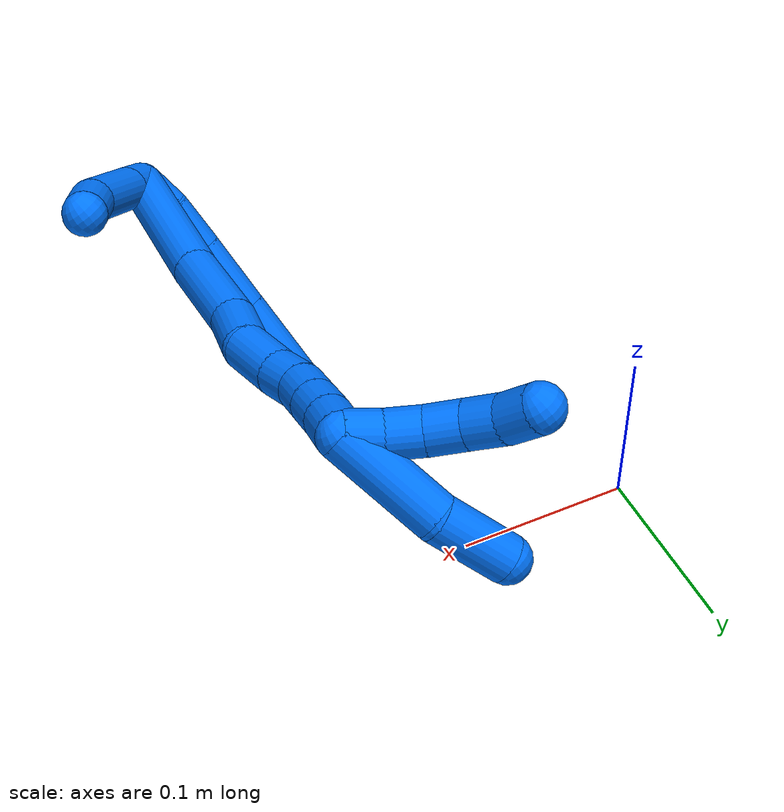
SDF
<sdf version="1.7">
 <world name="default">
  <model name="14">
   <static>0</static>
   <link name="14">
    <collision name="collision-cylinder-e_1_2_8">
     <pose>-0.001397 0.001871 -0.010816 -2.97027 -0.12663 1.27193</pose>
     <geometry><cylinder><radius>0.0125</radius><length>0.022131</length></cylinder></geometry>
     <surface>
      <friction><ode><mu>1.16</mu><mu2>1.16</mu2><slip1>0</slip1><slip2>0</slip2></ode></friction>
      <contact><ode><kp>1e+06</kp><kd>1</kd><max_vel>0</max_vel><min_depth>0.001</min_depth></ode></contact>
     </surface>
    </collision>
    <visual name="visual-cylinder-e_1_2_8">
     <pose>-0.001397 0.001871 -0.010816 -2.97027 -0.12663 1.27193</pose>
     <geometry><cylinder><radius>0.0125</radius><length>0.022131</length></cylinder></geometry>
     <material><ambient>0 0.462745 1 1</ambient></material>
    </visual>
    <collision name="collision-cylinder-e_2_8_9">
     <pose>-0.002456 0.0059 -0.036429 -2.99682 0.02266 -0.310002</pose>
     <geometry><cylinder><radius>0.0125</radius><length>0.029914</length></cylinder></geometry>
     <surface>
      <friction><ode><mu>1.16</mu><mu2>1.16</mu2><slip1>0</slip1><slip2>0</slip2></ode></friction>
      <contact><ode><kp>1e+06</kp><kd>1</kd><max_vel>0</max_vel><min_depth>0.001</min_depth></ode></contact>
     </surface>
    </collision>
    <visual name="visual-cylinder-e_2_8_9">
     <pose>-0.002456 0.0059 -0.036429 -2.99682 0.02266 -0.310002</pose>
     <geometry><cylinder><radius>0.0125</radius><length>0.029914</length></cylinder></geometry>
     <material><ambient>0 0.462745 1 1</ambient></material>
    </visual>
    <collision name="collision-cylinder-e_3_9_10">
     <pose>-0.001232 0.0115 -0.072986 -2.98468 0.040163 -0.500227</pose>
     <geometry><cylinder><radius>0.0125</radius><length>0.044097</length></cylinder></geometry>
     <surface>
      <friction><ode><mu>1.16</mu><mu2>1.16</mu2><slip1>0</slip1><slip2>0</slip2></ode></friction>
      <contact><ode><kp>1e+06</kp><kd>1</kd><max_vel>0</max_vel><min_depth>0.001</min_depth></ode></contact>
     </surface>
    </collision>
    <visual name="visual-cylinder-e_3_9_10">
     <pose>-0.001232 0.0115 -0.072986 -2.98468 0.040163 -0.500227</pose>
     <geometry><cylinder><radius>0.0125</radius><length>0.044097</length></cylinder></geometry>
     <material><ambient>0 0.462745 1 1</ambient></material>
    </visual>
    <collision name="collision-cylinder-e_4_10_6">
     <pose>0.00063 0.019233 -0.121313 -2.98152 0.036276 -0.444832</pose>
     <geometry><cylinder><radius>0.0125</radius><length>0.053858</length></cylinder></geometry>
     <surface>
      <friction><ode><mu>1.16</mu><mu2>1.16</mu2><slip1>0</slip1><slip2>0</slip2></ode></friction>
      <contact><ode><kp>1e+06</kp><kd>1</kd><max_vel>0</max_vel><min_depth>0.001</min_depth></ode></contact>
     </surface>
    </collision>
    <visual name="visual-cylinder-e_4_10_6">
     <pose>0.00063 0.019233 -0.121313 -2.98152 0.036276 -0.444832</pose>
     <geometry><cylinder><radius>0.0125</radius><length>0.053858</length></cylinder></geometry>
     <material><ambient>0 0.462745 1 1</ambient></material>
    </visual>
    <collision name="collision-cylinder-e_1_2_11">
     <pose>0.004928 0.008891 0.003719 -1.17468 0.472641 -0.317929</pose>
     <geometry><cylinder><radius>0.0125</radius><length>0.021649</length></cylinder></geometry>
     <surface>
      <friction><ode><mu>1.16</mu><mu2>1.16</mu2><slip1>0</slip1><slip2>0</slip2></ode></friction>
      <contact><ode><kp>1e+06</kp><kd>1</kd><max_vel>0</max_vel><min_depth>0.001</min_depth></ode></contact>
     </surface>
    </collision>
    <visual name="visual-cylinder-e_1_2_11">
     <pose>0.004928 0.008891 0.003719 -1.17468 0.472641 -0.317929</pose>
     <geometry><cylinder><radius>0.0125</radius><length>0.021649</length></cylinder></geometry>
     <material><ambient>0 0.462745 1 1</ambient></material>
    </visual>
    <collision name="collision-cylinder-e_2_11_12">
     <pose>0.021104 0.038612 0.015836 -1.18749 0.464344 -0.316516</pose>
     <geometry><cylinder><radius>0.0125</radius><length>0.050236</length></cylinder></geometry>
     <surface>
      <friction><ode><mu>1.16</mu><mu2>1.16</mu2><slip1>0</slip1><slip2>0</slip2></ode></friction>
      <contact><ode><kp>1e+06</kp><kd>1</kd><max_vel>0</max_vel><min_depth>0.001</min_depth></ode></contact>
     </surface>
    </collision>
    <visual name="visual-cylinder-e_2_11_12">
     <pose>0.021104 0.038612 0.015836 -1.18749 0.464344 -0.316516</pose>
     <geometry><cylinder><radius>0.0125</radius><length>0.050236</length></cylinder></geometry>
     <material><ambient>0 0.462745 1 1</ambient></material>
    </visual>
    <collision name="collision-cylinder-e_3_12_5">
     <pose>0.036681 0.072723 0.0258 -1.45353 0.312978 -0.278747</pose>
     <geometry><cylinder><radius>0.0125</radius><length>0.028115</length></cylinder></geometry>
     <surface>
      <friction><ode><mu>1.16</mu><mu2>1.16</mu2><slip1>0</slip1><slip2>0</slip2></ode></friction>
      <contact><ode><kp>1e+06</kp><kd>1</kd><max_vel>0</max_vel><min_depth>0.001</min_depth></ode></contact>
     </surface>
    </collision>
    <visual name="visual-cylinder-e_3_12_5">
     <pose>0.036681 0.072723 0.0258 -1.45353 0.312978 -0.278747</pose>
     <geometry><cylinder><radius>0.0125</radius><length>0.028115</length></cylinder></geometry>
     <material><ambient>0 0.462745 1 1</ambient></material>
    </visual>
    <collision name="collision-cylinder-e_1_2_13">
     <pose>0.006967 0.046301 -0.017178 -1.92605 0.140152 -0.201132</pose>
     <geometry><cylinder><radius>0.0125</radius><length>0.099748</length></cylinder></geometry>
     <surface>
      <friction><ode><mu>1.16</mu><mu2>1.16</mu2><slip1>0</slip1><slip2>0</slip2></ode></friction>
      <contact><ode><kp>1e+06</kp><kd>1</kd><max_vel>0</max_vel><min_depth>0.001</min_depth></ode></contact>
     </surface>
    </collision>
    <visual name="visual-cylinder-e_1_2_13">
     <pose>0.006967 0.046301 -0.017178 -1.92605 0.140152 -0.201132</pose>
     <geometry><cylinder><radius>0.0125</radius><length>0.099748</length></cylinder></geometry>
     <material><ambient>0 0.462745 1 1</ambient></material>
    </visual>
    <collision name="collision-cylinder-e_2_13_14">
     <pose>0.016565 0.11975 -0.043371 -1.89144 0.091702 -0.127</pose>
     <geometry><cylinder><radius>0.0125</radius><length>0.057452</length></cylinder></geometry>
     <surface>
      <friction><ode><mu>1.16</mu><mu2>1.16</mu2><slip1>0</slip1><slip2>0</slip2></ode></friction>
      <contact><ode><kp>1e+06</kp><kd>1</kd><max_vel>0</max_vel><min_depth>0.001</min_depth></ode></contact>
     </surface>
    </collision>
    <visual name="visual-cylinder-e_2_13_14">
     <pose>0.016565 0.11975 -0.043371 -1.89144 0.091702 -0.127</pose>
     <geometry><cylinder><radius>0.0125</radius><length>0.057452</length></cylinder></geometry>
     <material><ambient>0 0.462745 1 1</ambient></material>
    </visual>
    <collision name="collision-cylinder-e_3_14_15">
     <pose>0.022206 0.161934 -0.055111 -1.75002 0.194557 -0.232655</pose>
     <geometry><cylinder><radius>0.0125</radius><length>0.03115</length></cylinder></geometry>
     <surface>
      <friction><ode><mu>1.16</mu><mu2>1.16</mu2><slip1>0</slip1><slip2>0</slip2></ode></friction>
      <contact><ode><kp>1e+06</kp><kd>1</kd><max_vel>0</max_vel><min_depth>0.001</min_depth></ode></contact>
     </surface>
    </collision>
    <visual name="visual-cylinder-e_3_14_15">
     <pose>0.022206 0.161934 -0.055111 -1.75002 0.194557 -0.232655</pose>
     <geometry><cylinder><radius>0.0125</radius><length>0.03115</length></cylinder></geometry>
     <material><ambient>0 0.462745 1 1</ambient></material>
    </visual>
    <collision name="collision-cylinder-e_4_15_16">
     <pose>0.024022 0.191618 -0.063555 -1.94304 -0.07587 0.11101</pose>
     <geometry><cylinder><radius>0.0125</radius><length>0.03154</length></cylinder></geometry>
     <surface>
      <friction><ode><mu>1.16</mu><mu2>1.16</mu2><slip1>0</slip1><slip2>0</slip2></ode></friction>
      <contact><ode><kp>1e+06</kp><kd>1</kd><max_vel>0</max_vel><min_depth>0.001</min_depth></ode></contact>
     </surface>
    </collision>
    <visual name="visual-cylinder-e_4_15_16">
     <pose>0.024022 0.191618 -0.063555 -1.94304 -0.07587 0.11101</pose>
     <geometry><cylinder><radius>0.0125</radius><length>0.03154</length></cylinder></geometry>
     <material><ambient>0 0.462745 1 1</ambient></material>
    </visual>
    <collision name="collision-cylinder-e_5_16_17">
     <pose>0.021415 0.215774 -0.072101 -1.85986 -0.141434 0.189366</pose>
     <geometry><cylinder><radius>0.0125</radius><length>0.020039</length></cylinder></geometry>
     <surface>
      <friction><ode><mu>1.16</mu><mu2>1.16</mu2><slip1>0</slip1><slip2>0</slip2></ode></friction>
      <contact><ode><kp>1e+06</kp><kd>1</kd><max_vel>0</max_vel><min_depth>0.001</min_depth></ode></contact>
     </surface>
    </collision>
    <visual name="visual-cylinder-e_5_16_17">
     <pose>0.021415 0.215774 -0.072101 -1.85986 -0.141434 0.189366</pose>
     <geometry><cylinder><radius>0.0125</radius><length>0.020039</length></cylinder></geometry>
     <material><ambient>0 0.462745 1 1</ambient></material>
    </visual>
    <collision name="collision-cylinder-e_6_17_18">
     <pose>0.020622 0.235148 -0.076507 -1.72935 0.061921 -0.072599</pose>
     <geometry><cylinder><radius>0.0125</radius><length>0.020022</length></cylinder></geometry>
     <surface>
      <friction><ode><mu>1.16</mu><mu2>1.16</mu2><slip1>0</slip1><slip2>0</slip2></ode></friction>
      <contact><ode><kp>1e+06</kp><kd>1</kd><max_vel>0</max_vel><min_depth>0.001</min_depth></ode></contact>
     </surface>
    </collision>
    <visual name="visual-cylinder-e_6_17_18">
     <pose>0.020622 0.235148 -0.076507 -1.72935 0.061921 -0.072599</pose>
     <geometry><cylinder><radius>0.0125</radius><length>0.020022</length></cylinder></geometry>
     <material><ambient>0 0.462745 1 1</ambient></material>
    </visual>
    <collision name="collision-cylinder-e_7_18_19">
     <pose>0.021845 0.254914 -0.079408 -1.70369 0.060386 -0.068989</pose>
     <geometry><cylinder><radius>0.0125</radius><length>0.020011</length></cylinder></geometry>
     <surface>
      <friction><ode><mu>1.16</mu><mu2>1.16</mu2><slip1>0</slip1><slip2>0</slip2></ode></friction>
      <contact><ode><kp>1e+06</kp><kd>1</kd><max_vel>0</max_vel><min_depth>0.001</min_depth></ode></contact>
     </surface>
    </collision>
    <visual name="visual-cylinder-e_7_18_19">
     <pose>0.021845 0.254914 -0.079408 -1.70369 0.060386 -0.068989</pose>
     <geometry><cylinder><radius>0.0125</radius><length>0.020011</length></cylinder></geometry>
     <material><ambient>0 0.462745 1 1</ambient></material>
    </visual>
    <collision name="collision-cylinder-e_8_19_1">
     <pose>0.023567 0.274728 -0.081641 -1.66237 0.11187 -0.122588</pose>
     <geometry><cylinder><radius>0.0125</radius><length>0.020037</length></cylinder></geometry>
     <surface>
      <friction><ode><mu>1.16</mu><mu2>1.16</mu2><slip1>0</slip1><slip2>0</slip2></ode></friction>
      <contact><ode><kp>1e+06</kp><kd>1</kd><max_vel>0</max_vel><min_depth>0.001</min_depth></ode></contact>
     </surface>
    </collision>
    <visual name="visual-cylinder-e_8_19_1">
     <pose>0.023567 0.274728 -0.081641 -1.66237 0.11187 -0.122588</pose>
     <geometry><cylinder><radius>0.0125</radius><length>0.020037</length></cylinder></geometry>
     <material><ambient>0 0.462745 1 1</ambient></material>
    </visual>
    <collision name="collision-cylinder-e_1_1_20">
     <pose>0.017067 0.286015 -0.088882 -2.92798 -0.866162 2.68587</pose>
     <geometry><cylinder><radius>0.0125</radius><length>0.02</length></cylinder></geometry>
     <surface>
      <friction><ode><mu>1.16</mu><mu2>1.16</mu2><slip1>0</slip1><slip2>0</slip2></ode></friction>
      <contact><ode><kp>1e+06</kp><kd>1</kd><max_vel>0</max_vel><min_depth>0.001</min_depth></ode></contact>
     </surface>
    </collision>
    <visual name="visual-cylinder-e_1_1_20">
     <pose>0.017067 0.286015 -0.088882 -2.92798 -0.866162 2.68587</pose>
     <geometry><cylinder><radius>0.0125</radius><length>0.02</length></cylinder></geometry>
     <material><ambient>0 0.462745 1 1</ambient></material>
    </visual>
    <collision name="collision-cylinder-e_2_20_21">
     <pose>0.001399 0.290776 -0.100082 -2.53377 -0.935718 2.03058</pose>
     <geometry><cylinder><radius>0.0125</radius><length>0.02</length></cylinder></geometry>
     <surface>
      <friction><ode><mu>1.16</mu><mu2>1.16</mu2><slip1>0</slip1><slip2>0</slip2></ode></friction>
      <contact><ode><kp>1e+06</kp><kd>1</kd><max_vel>0</max_vel><min_depth>0.001</min_depth></ode></contact>
     </surface>
    </collision>
    <visual name="visual-cylinder-e_2_20_21">
     <pose>0.001399 0.290776 -0.100082 -2.53377 -0.935718 2.03058</pose>
     <geometry><cylinder><radius>0.0125</radius><length>0.02</length></cylinder></geometry>
     <material><ambient>0 0.462745 1 1</ambient></material>
    </visual>
    <collision name="collision-cylinder-e_3_21_22">
     <pose>-0.014596 0.299222 -0.108315 -2.15748 -0.918043 1.48969</pose>
     <geometry><cylinder><radius>0.0125</radius><length>0.02</length></cylinder></geometry>
     <surface>
      <friction><ode><mu>1.16</mu><mu2>1.16</mu2><slip1>0</slip1><slip2>0</slip2></ode></friction>
      <contact><ode><kp>1e+06</kp><kd>1</kd><max_vel>0</max_vel><min_depth>0.001</min_depth></ode></contact>
     </surface>
    </collision>
    <visual name="visual-cylinder-e_3_21_22">
     <pose>-0.014596 0.299222 -0.108315 -2.15748 -0.918043 1.48969</pose>
     <geometry><cylinder><radius>0.0125</radius><length>0.02</length></cylinder></geometry>
     <material><ambient>0 0.462745 1 1</ambient></material>
    </visual>
    <collision name="collision-cylinder-e_4_22_23">
     <pose>-0.02945 0.311226 -0.11368 -1.85153 -0.762864 0.979493</pose>
     <geometry><cylinder><radius>0.0125</radius><length>0.02</length></cylinder></geometry>
     <surface>
      <friction><ode><mu>1.16</mu><mu2>1.16</mu2><slip1>0</slip1><slip2>0</slip2></ode></friction>
      <contact><ode><kp>1e+06</kp><kd>1</kd><max_vel>0</max_vel><min_depth>0.001</min_depth></ode></contact>
     </surface>
    </collision>
    <visual name="visual-cylinder-e_4_22_23">
     <pose>-0.02945 0.311226 -0.11368 -1.85153 -0.762864 0.979493</pose>
     <geometry><cylinder><radius>0.0125</radius><length>0.02</length></cylinder></geometry>
     <material><ambient>0 0.462745 1 1</ambient></material>
    </visual>
    <collision name="collision-cylinder-e_5_23_4">
     <pose>-0.042539 0.326024 -0.115285 -1.52025 -0.666041 0.635417</pose>
     <geometry><cylinder><radius>0.0125</radius><length>0.02</length></cylinder></geometry>
     <surface>
      <friction><ode><mu>1.16</mu><mu2>1.16</mu2><slip1>0</slip1><slip2>0</slip2></ode></friction>
      <contact><ode><kp>1e+06</kp><kd>1</kd><max_vel>0</max_vel><min_depth>0.001</min_depth></ode></contact>
     </surface>
    </collision>
    <visual name="visual-cylinder-e_5_23_4">
     <pose>-0.042539 0.326024 -0.115285 -1.52025 -0.666041 0.635417</pose>
     <geometry><cylinder><radius>0.0125</radius><length>0.02</length></cylinder></geometry>
     <material><ambient>0 0.462745 1 1</ambient></material>
    </visual>
    <collision name="collision-cylinder-e_1_1_24">
     <pose>0.019982 0.293997 -0.110187 -2.81517 -0.159842 0.905345</pose>
     <geometry><cylinder><radius>0.0125</radius><length>0.059104</length></cylinder></geometry>
     <surface>
      <friction><ode><mu>1.16</mu><mu2>1.16</mu2><slip1>0</slip1><slip2>0</slip2></ode></friction>
      <contact><ode><kp>1e+06</kp><kd>1</kd><max_vel>0</max_vel><min_depth>0.001</min_depth></ode></contact>
     </surface>
    </collision>
    <visual name="visual-cylinder-e_1_1_24">
     <pose>0.019982 0.293997 -0.110187 -2.81517 -0.159842 0.905345</pose>
     <geometry><cylinder><radius>0.0125</radius><length>0.059104</length></cylinder></geometry>
     <material><ambient>0 0.462745 1 1</ambient></material>
    </visual>
    <collision name="collision-cylinder-e_2_24_3">
     <pose>0.008634 0.305678 -0.157019 -3.02103 -0.33097 2.44804</pose>
     <geometry><cylinder><radius>0.0125</radius><length>0.040896</length></cylinder></geometry>
     <surface>
      <friction><ode><mu>1.16</mu><mu2>1.16</mu2><slip1>0</slip1><slip2>0</slip2></ode></friction>
      <contact><ode><kp>1e+06</kp><kd>1</kd><max_vel>0</max_vel><min_depth>0.001</min_depth></ode></contact>
     </surface>
    </collision>
    <visual name="visual-cylinder-e_2_24_3">
     <pose>0.008634 0.305678 -0.157019 -3.02103 -0.33097 2.44804</pose>
     <geometry><cylinder><radius>0.0125</radius><length>0.040896</length></cylinder></geometry>
     <material><ambient>0 0.462745 1 1</ambient></material>
    </visual>
    <collision name="collision-sphere-3">
     <pose>0.001989 0.308004 -0.176217 0 -0 0</pose>
     <geometry><sphere><radius>0.0125</radius></sphere></geometry>
     <surface>
      <friction><ode><mu>1.16</mu><mu2>1.16</mu2><slip1>0</slip1><slip2>0</slip2></ode></friction>
      <contact><ode><kp>1e+06</kp><kd>1</kd><max_vel>0</max_vel><min_depth>0.001</min_depth></ode></contact>
     </surface>
    </collision>
    <visual name="visual-sphere-3">
     <pose>0.001989 0.308004 -0.176217 0 -0 0</pose>
     <geometry><sphere><radius>0.0125</radius></sphere></geometry>
     <material><ambient>0 0.462745 1 1</ambient></material>
    </visual>
    <collision name="collision-sphere-24">
     <pose>0.015279 0.303352 -0.137821 0 -0 0</pose>
     <geometry><sphere><radius>0.0125</radius></sphere></geometry>
     <surface>
      <friction><ode><mu>1.16</mu><mu2>1.16</mu2><slip1>0</slip1><slip2>0</slip2></ode></friction>
      <contact><ode><kp>1e+06</kp><kd>1</kd><max_vel>0</max_vel><min_depth>0.001</min_depth></ode></contact>
     </surface>
    </collision>
    <visual name="visual-sphere-24">
     <pose>0.015279 0.303352 -0.137821 0 -0 0</pose>
     <geometry><sphere><radius>0.0125</radius></sphere></geometry>
     <material><ambient>0 0.462745 1 1</ambient></material>
    </visual>
    <collision name="collision-sphere-4">
     <pose>-0.048717 0.333877 -0.114888 0 -0 0</pose>
     <geometry><sphere><radius>0.0125</radius></sphere></geometry>
     <surface>
      <friction><ode><mu>1.16</mu><mu2>1.16</mu2><slip1>0</slip1><slip2>0</slip2></ode></friction>
      <contact><ode><kp>1e+06</kp><kd>1</kd><max_vel>0</max_vel><min_depth>0.001</min_depth></ode></contact>
     </surface>
    </collision>
    <visual name="visual-sphere-4">
     <pose>-0.048717 0.333877 -0.114888 0 -0 0</pose>
     <geometry><sphere><radius>0.0125</radius></sphere></geometry>
     <material><ambient>0 0.462745 1 1</ambient></material>
    </visual>
    <collision name="collision-sphere-23">
     <pose>-0.03636 0.318171 -0.115683 0 -0 0</pose>
     <geometry><sphere><radius>0.0125</radius></sphere></geometry>
     <surface>
      <friction><ode><mu>1.16</mu><mu2>1.16</mu2><slip1>0</slip1><slip2>0</slip2></ode></friction>
      <contact><ode><kp>1e+06</kp><kd>1</kd><max_vel>0</max_vel><min_depth>0.001</min_depth></ode></contact>
     </surface>
    </collision>
    <visual name="visual-sphere-23">
     <pose>-0.03636 0.318171 -0.115683 0 -0 0</pose>
     <geometry><sphere><radius>0.0125</radius></sphere></geometry>
     <material><ambient>0 0.462745 1 1</ambient></material>
    </visual>
    <collision name="collision-sphere-22">
     <pose>-0.02254 0.30428 -0.111677 0 -0 0</pose>
     <geometry><sphere><radius>0.0125</radius></sphere></geometry>
     <surface>
      <friction><ode><mu>1.16</mu><mu2>1.16</mu2><slip1>0</slip1><slip2>0</slip2></ode></friction>
      <contact><ode><kp>1e+06</kp><kd>1</kd><max_vel>0</max_vel><min_depth>0.001</min_depth></ode></contact>
     </surface>
    </collision>
    <visual name="visual-sphere-22">
     <pose>-0.02254 0.30428 -0.111677 0 -0 0</pose>
     <geometry><sphere><radius>0.0125</radius></sphere></geometry>
     <material><ambient>0 0.462745 1 1</ambient></material>
    </visual>
    <collision name="collision-sphere-21">
     <pose>-0.006652 0.294164 -0.104952 0 -0 0</pose>
     <geometry><sphere><radius>0.0125</radius></sphere></geometry>
     <surface>
      <friction><ode><mu>1.16</mu><mu2>1.16</mu2><slip1>0</slip1><slip2>0</slip2></ode></friction>
      <contact><ode><kp>1e+06</kp><kd>1</kd><max_vel>0</max_vel><min_depth>0.001</min_depth></ode></contact>
     </surface>
    </collision>
    <visual name="visual-sphere-21">
     <pose>-0.006652 0.294164 -0.104952 0 -0 0</pose>
     <geometry><sphere><radius>0.0125</radius></sphere></geometry>
     <material><ambient>0 0.462745 1 1</ambient></material>
    </visual>
    <collision name="collision-sphere-20">
     <pose>0.009449 0.287388 -0.095212 0 -0 0</pose>
     <geometry><sphere><radius>0.0125</radius></sphere></geometry>
     <surface>
      <friction><ode><mu>1.16</mu><mu2>1.16</mu2><slip1>0</slip1><slip2>0</slip2></ode></friction>
      <contact><ode><kp>1e+06</kp><kd>1</kd><max_vel>0</max_vel><min_depth>0.001</min_depth></ode></contact>
     </surface>
    </collision>
    <visual name="visual-sphere-20">
     <pose>0.009449 0.287388 -0.095212 0 -0 0</pose>
     <geometry><sphere><radius>0.0125</radius></sphere></geometry>
     <material><ambient>0 0.462745 1 1</ambient></material>
    </visual>
    <collision name="collision-sphere-11">
     <pose>0.009855 0.017783 0.007437 0 -0 0</pose>
     <geometry><sphere><radius>0.0125</radius></sphere></geometry>
     <surface>
      <friction><ode><mu>1.16</mu><mu2>1.16</mu2><slip1>0</slip1><slip2>0</slip2></ode></friction>
      <contact><ode><kp>1e+06</kp><kd>1</kd><max_vel>0</max_vel><min_depth>0.001</min_depth></ode></contact>
     </surface>
    </collision>
    <visual name="visual-sphere-11">
     <pose>0.009855 0.017783 0.007437 0 -0 0</pose>
     <geometry><sphere><radius>0.0125</radius></sphere></geometry>
     <material><ambient>0 0.462745 1 1</ambient></material>
    </visual>
    <collision name="collision-sphere-6">
     <pose>0.001607 0.023522 -0.14788 0 -0 0</pose>
     <geometry><sphere><radius>0.0125</radius></sphere></geometry>
     <surface>
      <friction><ode><mu>1.16</mu><mu2>1.16</mu2><slip1>0</slip1><slip2>0</slip2></ode></friction>
      <contact><ode><kp>1e+06</kp><kd>1</kd><max_vel>0</max_vel><min_depth>0.001</min_depth></ode></contact>
     </surface>
    </collision>
    <visual name="visual-sphere-6">
     <pose>0.001607 0.023522 -0.14788 0 -0 0</pose>
     <geometry><sphere><radius>0.0125</radius></sphere></geometry>
     <material><ambient>0 0.462745 1 1</ambient></material>
    </visual>
    <collision name="collision-sphere-10">
     <pose>-0.000347 0.014943 -0.094746 0 -0 0</pose>
     <geometry><sphere><radius>0.0125</radius></sphere></geometry>
     <surface>
      <friction><ode><mu>1.16</mu><mu2>1.16</mu2><slip1>0</slip1><slip2>0</slip2></ode></friction>
      <contact><ode><kp>1e+06</kp><kd>1</kd><max_vel>0</max_vel><min_depth>0.001</min_depth></ode></contact>
     </surface>
    </collision>
    <visual name="visual-sphere-10">
     <pose>-0.000347 0.014943 -0.094746 0 -0 0</pose>
     <geometry><sphere><radius>0.0125</radius></sphere></geometry>
     <material><ambient>0 0.462745 1 1</ambient></material>
    </visual>
    <collision name="collision-sphere-9">
     <pose>-0.002117 0.008057 -0.051226 0 -0 0</pose>
     <geometry><sphere><radius>0.0125</radius></sphere></geometry>
     <surface>
      <friction><ode><mu>1.16</mu><mu2>1.16</mu2><slip1>0</slip1><slip2>0</slip2></ode></friction>
      <contact><ode><kp>1e+06</kp><kd>1</kd><max_vel>0</max_vel><min_depth>0.001</min_depth></ode></contact>
     </surface>
    </collision>
    <visual name="visual-sphere-9">
     <pose>-0.002117 0.008057 -0.051226 0 -0 0</pose>
     <geometry><sphere><radius>0.0125</radius></sphere></geometry>
     <material><ambient>0 0.462745 1 1</ambient></material>
    </visual>
    <collision name="collision-sphere-2">
     <geometry><sphere><radius>0.0125</radius></sphere></geometry>
     <surface>
      <friction><ode><mu>1.16</mu><mu2>1.16</mu2><slip1>0</slip1><slip2>0</slip2></ode></friction>
      <contact><ode><kp>1e+06</kp><kd>1</kd><max_vel>0</max_vel><min_depth>0.001</min_depth></ode></contact>
     </surface>
    </collision>
    <visual name="visual-sphere-2">
     <geometry><sphere><radius>0.0125</radius></sphere></geometry>
     <material><ambient>0 0.462745 1 1</ambient></material>
    </visual>
    <collision name="collision-sphere-19">
     <pose>0.022449 0.264814 -0.080731 0 -0 0</pose>
     <geometry><sphere><radius>0.0125</radius></sphere></geometry>
     <surface>
      <friction><ode><mu>1.16</mu><mu2>1.16</mu2><slip1>0</slip1><slip2>0</slip2></ode></friction>
      <contact><ode><kp>1e+06</kp><kd>1</kd><max_vel>0</max_vel><min_depth>0.001</min_depth></ode></contact>
     </surface>
    </collision>
    <visual name="visual-sphere-19">
     <pose>0.022449 0.264814 -0.080731 0 -0 0</pose>
     <geometry><sphere><radius>0.0125</radius></sphere></geometry>
     <material><ambient>0 0.462745 1 1</ambient></material>
    </visual>
    <collision name="collision-sphere-8">
     <pose>-0.002795 0.003743 -0.021632 0 -0 0</pose>
     <geometry><sphere><radius>0.0125</radius></sphere></geometry>
     <surface>
      <friction><ode><mu>1.16</mu><mu2>1.16</mu2><slip1>0</slip1><slip2>0</slip2></ode></friction>
      <contact><ode><kp>1e+06</kp><kd>1</kd><max_vel>0</max_vel><min_depth>0.001</min_depth></ode></contact>
     </surface>
    </collision>
    <visual name="visual-sphere-8">
     <pose>-0.002795 0.003743 -0.021632 0 -0 0</pose>
     <geometry><sphere><radius>0.0125</radius></sphere></geometry>
     <material><ambient>0 0.462745 1 1</ambient></material>
    </visual>
    <collision name="collision-sphere-12">
     <pose>0.032353 0.05944 0.024235 0 -0 0</pose>
     <geometry><sphere><radius>0.0125</radius></sphere></geometry>
     <surface>
      <friction><ode><mu>1.16</mu><mu2>1.16</mu2><slip1>0</slip1><slip2>0</slip2></ode></friction>
      <contact><ode><kp>1e+06</kp><kd>1</kd><max_vel>0</max_vel><min_depth>0.001</min_depth></ode></contact>
     </surface>
    </collision>
    <visual name="visual-sphere-12">
     <pose>0.032353 0.05944 0.024235 0 -0 0</pose>
     <geometry><sphere><radius>0.0125</radius></sphere></geometry>
     <material><ambient>0 0.462745 1 1</ambient></material>
    </visual>
    <collision name="collision-sphere-5">
     <pose>0.041009 0.086006 0.027365 0 -0 0</pose>
     <geometry><sphere><radius>0.0125</radius></sphere></geometry>
     <surface>
      <friction><ode><mu>1.16</mu><mu2>1.16</mu2><slip1>0</slip1><slip2>0</slip2></ode></friction>
      <contact><ode><kp>1e+06</kp><kd>1</kd><max_vel>0</max_vel><min_depth>0.001</min_depth></ode></contact>
     </surface>
    </collision>
    <visual name="visual-sphere-5">
     <pose>0.041009 0.086006 0.027365 0 -0 0</pose>
     <geometry><sphere><radius>0.0125</radius></sphere></geometry>
     <material><ambient>0 0.462745 1 1</ambient></material>
    </visual>
    <collision name="collision-sphere-13">
     <pose>0.013934 0.092603 -0.034355 0 -0 0</pose>
     <geometry><sphere><radius>0.0125</radius></sphere></geometry>
     <surface>
      <friction><ode><mu>1.16</mu><mu2>1.16</mu2><slip1>0</slip1><slip2>0</slip2></ode></friction>
      <contact><ode><kp>1e+06</kp><kd>1</kd><max_vel>0</max_vel><min_depth>0.001</min_depth></ode></contact>
     </surface>
    </collision>
    <visual name="visual-sphere-13">
     <pose>0.013934 0.092603 -0.034355 0 -0 0</pose>
     <geometry><sphere><radius>0.0125</radius></sphere></geometry>
     <material><ambient>0 0.462745 1 1</ambient></material>
    </visual>
    <collision name="collision-sphere-14">
     <pose>0.019195 0.146898 -0.052387 0 -0 0</pose>
     <geometry><sphere><radius>0.0125</radius></sphere></geometry>
     <surface>
      <friction><ode><mu>1.16</mu><mu2>1.16</mu2><slip1>0</slip1><slip2>0</slip2></ode></friction>
      <contact><ode><kp>1e+06</kp><kd>1</kd><max_vel>0</max_vel><min_depth>0.001</min_depth></ode></contact>
     </surface>
    </collision>
    <visual name="visual-sphere-14">
     <pose>0.019195 0.146898 -0.052387 0 -0 0</pose>
     <geometry><sphere><radius>0.0125</radius></sphere></geometry>
     <material><ambient>0 0.462745 1 1</ambient></material>
    </visual>
    <collision name="collision-sphere-15">
     <pose>0.025218 0.176971 -0.057835 0 -0 0</pose>
     <geometry><sphere><radius>0.0125</radius></sphere></geometry>
     <surface>
      <friction><ode><mu>1.16</mu><mu2>1.16</mu2><slip1>0</slip1><slip2>0</slip2></ode></friction>
      <contact><ode><kp>1e+06</kp><kd>1</kd><max_vel>0</max_vel><min_depth>0.001</min_depth></ode></contact>
     </surface>
    </collision>
    <visual name="visual-sphere-15">
     <pose>0.025218 0.176971 -0.057835 0 -0 0</pose>
     <geometry><sphere><radius>0.0125</radius></sphere></geometry>
     <material><ambient>0 0.462745 1 1</ambient></material>
    </visual>
    <collision name="collision-sphere-16">
     <pose>0.022827 0.206266 -0.069274 0 -0 0</pose>
     <geometry><sphere><radius>0.0125</radius></sphere></geometry>
     <surface>
      <friction><ode><mu>1.16</mu><mu2>1.16</mu2><slip1>0</slip1><slip2>0</slip2></ode></friction>
      <contact><ode><kp>1e+06</kp><kd>1</kd><max_vel>0</max_vel><min_depth>0.001</min_depth></ode></contact>
     </surface>
    </collision>
    <visual name="visual-sphere-16">
     <pose>0.022827 0.206266 -0.069274 0 -0 0</pose>
     <geometry><sphere><radius>0.0125</radius></sphere></geometry>
     <material><ambient>0 0.462745 1 1</ambient></material>
    </visual>
    <collision name="collision-sphere-17">
     <pose>0.020002 0.225282 -0.074929 0 -0 0</pose>
     <geometry><sphere><radius>0.0125</radius></sphere></geometry>
     <surface>
      <friction><ode><mu>1.16</mu><mu2>1.16</mu2><slip1>0</slip1><slip2>0</slip2></ode></friction>
      <contact><ode><kp>1e+06</kp><kd>1</kd><max_vel>0</max_vel><min_depth>0.001</min_depth></ode></contact>
     </surface>
    </collision>
    <visual name="visual-sphere-17">
     <pose>0.020002 0.225282 -0.074929 0 -0 0</pose>
     <geometry><sphere><radius>0.0125</radius></sphere></geometry>
     <material><ambient>0 0.462745 1 1</ambient></material>
    </visual>
    <collision name="collision-sphere-18">
     <pose>0.021241 0.245015 -0.078084 0 -0 0</pose>
     <geometry><sphere><radius>0.0125</radius></sphere></geometry>
     <surface>
      <friction><ode><mu>1.16</mu><mu2>1.16</mu2><slip1>0</slip1><slip2>0</slip2></ode></friction>
      <contact><ode><kp>1e+06</kp><kd>1</kd><max_vel>0</max_vel><min_depth>0.001</min_depth></ode></contact>
     </surface>
    </collision>
    <visual name="visual-sphere-18">
     <pose>0.021241 0.245015 -0.078084 0 -0 0</pose>
     <geometry><sphere><radius>0.0125</radius></sphere></geometry>
     <material><ambient>0 0.462745 1 1</ambient></material>
    </visual>
    <collision name="collision-sphere-1">
     <pose>0.024686 0.284642 -0.082552 0 -0 0</pose>
     <geometry><sphere><radius>0.0125</radius></sphere></geometry>
     <surface>
      <friction><ode><mu>1.16</mu><mu2>1.16</mu2><slip1>0</slip1><slip2>0</slip2></ode></friction>
      <contact><ode><kp>1e+06</kp><kd>1</kd><max_vel>0</max_vel><min_depth>0.001</min_depth></ode></contact>
     </surface>
    </collision>
    <visual name="visual-sphere-1">
     <pose>0.024686 0.284642 -0.082552 0 -0 0</pose>
     <geometry><sphere><radius>0.0125</radius></sphere></geometry>
     <material><ambient>0 0.462745 1 1</ambient></material>
    </visual>
    <inertial>
     <pose>0.009457 0.144406 -0.062755 0 -0 0</pose>
     <mass>0.75</mass>
     <inertia>
      <ixx>0.000148</ixx>
      <ixy>0</ixy>
      <ixz>0</ixz>
      <iyy>-2.8e-05</iyy>
      <iyz>0</iyz>
      <izz>-0.000177</izz>
     </inertia>
    </inertial>
   </link>
   <pose>0.193566 -0.243141 0.11809 0.554472 0.385701 0.172937</pose>
  </model>
 </world>
</sdf>
